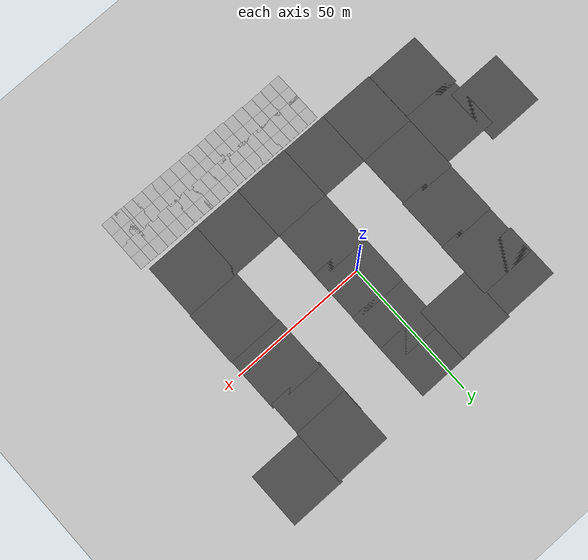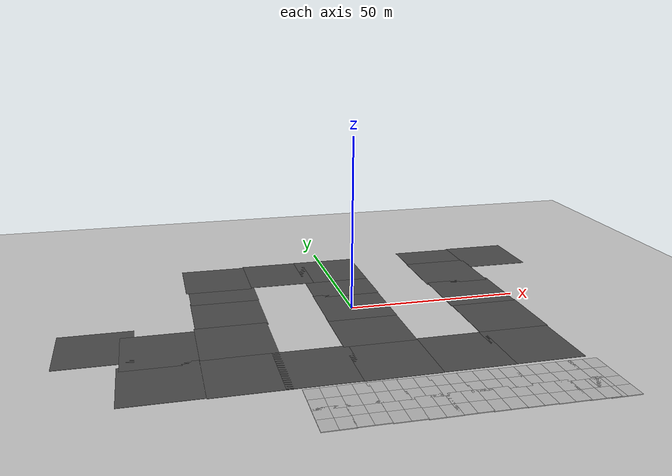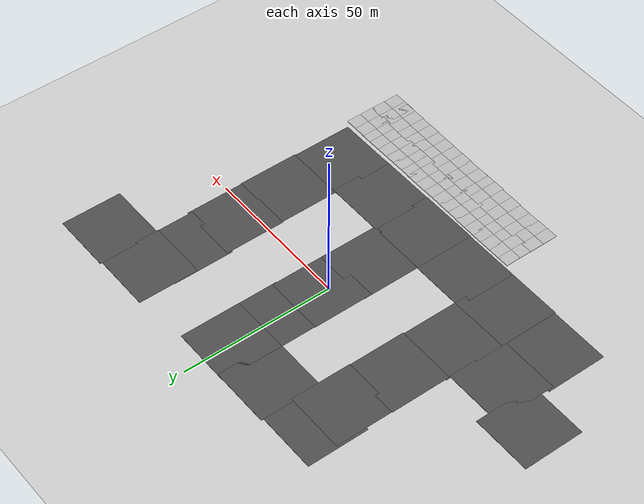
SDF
<sdf version="1.7">
 <world name="default">
  <light name="sun" type="directional">
   <pose>0 0 10 0 -0 0</pose>
   <diffuse>0.8 0.8 0.8 1</diffuse>
   <specular>0.2 0.2 0.2 1</specular>
   <attenuation>
    <range>1000</range>
    <constant>0.9</constant>
    <linear>0.01</linear>
    <quadratic>0.001</quadratic>
   </attenuation>
   <direction>-0.5 0.1 -0.9</direction>
   <spot><inner_angle>0</inner_angle><outer_angle>0</outer_angle><falloff>0</falloff></spot>
  </light>
  <model name="ground_plane">
   <static>1</static>
   <link name="link">
    <collision name="collision">
     <geometry><plane><normal>0 0 1</normal><size>100 100</size></plane></geometry>
     <surface><friction><ode><mu>100</mu><mu2>50</mu2></ode></friction></surface>
    </collision>
    <visual name="visual">
     <cast_shadows>0</cast_shadows>
     <geometry><plane><normal>0 0 1</normal><size>100 100</size></plane></geometry>
     <material>
      <script><uri>file://media/materials/scripts/gazebo.material</uri><name>Gazebo/Grey</name></script>
     </material>
    </visual>
   </link>
  </model>
  <gravity>0 0 -9.8</gravity>
  <magnetic_field>6e-06 2.3e-05 -4.2e-05</magnetic_field>
  <atmosphere type="adiabatic"/>
  <physics type="ode">
   <max_step_size>0.001</max_step_size>
   <real_time_factor>1</real_time_factor>
   <real_time_update_rate>1000</real_time_update_rate>
  </physics>
  <scene><ambient>0.4 0.4 0.4 1</ambient><background>0.7 0.7 0.7 1</background><shadows>1</shadows></scene>
  <audio><device>default</device></audio>
  <spherical_coordinates>
   <surface_model>EARTH_WGS84</surface_model>
   <latitude_deg>0</latitude_deg>
   <longitude_deg>0</longitude_deg>
   <elevation>0</elevation>
   <heading_deg>0</heading_deg>
  </spherical_coordinates>
  <model name="asphalt_plane">
   <static>1</static>
   <link name="link">
    <collision name="collision"><geometry><box><size>20 20 0.1</size></box></geometry></collision>
    <visual name="visual">
     <cast_shadows>0</cast_shadows>
     <geometry><box><size>20 20 0.1</size></box></geometry>
     <material>
      <script>
       <uri>model://asphalt_plane/materials/scripts</uri>
       <uri>model://asphalt_plane/materials/textures</uri>
       <name>vrc/asphalt</name>
      </script>
     </material>
    </visual>
   </link>
   <pose>-35.8594 -34.783 0 0 -0 0</pose>
  </model>
  <model name="asphalt_plane_1">
   <static>1</static>
   <link name="link">
    <collision name="collision"><geometry><box><size>20 20 0.1</size></box></geometry></collision>
    <visual name="visual">
     <cast_shadows>0</cast_shadows>
     <geometry><box><size>20 20 0.1</size></box></geometry>
     <material>
      <script>
       <uri>model://asphalt_plane/materials/scripts</uri>
       <uri>model://asphalt_plane/materials/textures</uri>
       <name>vrc/asphalt</name>
      </script>
     </material>
    </visual>
   </link>
   <pose>-35.8174 -14.9783 0 0 -0 0</pose>
  </model>
  <model name="asphalt_plane_1_clone">
   <static>1</static>
   <link name="link">
    <collision name="collision"><geometry><box><size>20 20 0.1</size></box></geometry></collision>
    <visual name="visual">
     <cast_shadows>0</cast_shadows>
     <geometry><box><size>20 20 0.1</size></box></geometry>
     <material>
      <script>
       <uri>model://asphalt_plane/materials/scripts</uri>
       <uri>model://asphalt_plane/materials/textures</uri>
       <name>vrc/asphalt</name>
      </script>
     </material>
    </visual>
   </link>
   <pose>-35.4994 3.67929 0 0 -0 0</pose>
  </model>
  <model name="asphalt_plane_1_clone_0">
   <static>1</static>
   <link name="link">
    <collision name="collision"><geometry><box><size>20 20 0.1</size></box></geometry></collision>
    <visual name="visual">
     <cast_shadows>0</cast_shadows>
     <geometry><box><size>20 20 0.1</size></box></geometry>
     <material>
      <script>
       <uri>model://asphalt_plane/materials/scripts</uri>
       <uri>model://asphalt_plane/materials/textures</uri>
       <name>vrc/asphalt</name>
      </script>
     </material>
    </visual>
   </link>
   <pose>-35.3091 22.4132 0 0 -0 0</pose>
  </model>
  <model name="asphalt_plane_1_clone_1">
   <static>1</static>
   <link name="link">
    <collision name="collision"><geometry><box><size>20 20 0.1</size></box></geometry></collision>
    <visual name="visual">
     <cast_shadows>0</cast_shadows>
     <geometry><box><size>20 20 0.1</size></box></geometry>
     <material>
      <script>
       <uri>model://asphalt_plane/materials/scripts</uri>
       <uri>model://asphalt_plane/materials/textures</uri>
       <name>vrc/asphalt</name>
      </script>
     </material>
    </visual>
   </link>
   <pose>-36.054 32.4043 0 0 -0 0</pose>
  </model>
  <model name="asphalt_plane_1_clone_2">
   <static>1</static>
   <link name="link">
    <collision name="collision"><geometry><box><size>20 20 0.1</size></box></geometry></collision>
    <visual name="visual">
     <cast_shadows>0</cast_shadows>
     <geometry><box><size>20 20 0.1</size></box></geometry>
     <material>
      <script>
       <uri>model://asphalt_plane/materials/scripts</uri>
       <uri>model://asphalt_plane/materials/textures</uri>
       <name>vrc/asphalt</name>
      </script>
     </material>
    </visual>
   </link>
   <pose>-16.2066 33.1694 0 0 -0 0</pose>
  </model>
  <model name="asphalt_plane_1_clone_3">
   <static>1</static>
   <link name="link">
    <collision name="collision"><geometry><box><size>20 20 0.1</size></box></geometry></collision>
    <visual name="visual">
     <cast_shadows>0</cast_shadows>
     <geometry><box><size>20 20 0.1</size></box></geometry>
     <material>
      <script>
       <uri>model://asphalt_plane/materials/scripts</uri>
       <uri>model://asphalt_plane/materials/textures</uri>
       <name>vrc/asphalt</name>
      </script>
     </material>
    </visual>
   </link>
   <pose>1.16306 33.2821 0 0 -0 0</pose>
  </model>
  <model name="asphalt_plane_1_clone_4">
   <static>1</static>
   <link name="link">
    <collision name="collision"><geometry><box><size>20 20 0.1</size></box></geometry></collision>
    <visual name="visual">
     <cast_shadows>0</cast_shadows>
     <geometry><box><size>20 20 0.1</size></box></geometry>
     <material>
      <script>
       <uri>model://asphalt_plane/materials/scripts</uri>
       <uri>model://asphalt_plane/materials/textures</uri>
       <name>vrc/asphalt</name>
      </script>
     </material>
    </visual>
   </link>
   <pose>1.12304 20.2153 0 0 -0 0</pose>
  </model>
  <model name="asphalt_plane_1_clone_5">
   <static>1</static>
   <link name="link">
    <collision name="collision"><geometry><box><size>20 20 0.1</size></box></geometry></collision>
    <visual name="visual">
     <cast_shadows>0</cast_shadows>
     <geometry><box><size>20 20 0.1</size></box></geometry>
     <material>
      <script>
       <uri>model://asphalt_plane/materials/scripts</uri>
       <uri>model://asphalt_plane/materials/textures</uri>
       <name>vrc/asphalt</name>
      </script>
     </material>
    </visual>
   </link>
   <pose>0.961719 1.80257 0 0 -0 0</pose>
  </model>
  <model name="asphalt_plane_1_clone_6">
   <static>1</static>
   <link name="link">
    <collision name="collision"><geometry><box><size>20 20 0.1</size></box></geometry></collision>
    <visual name="visual">
     <cast_shadows>0</cast_shadows>
     <geometry><box><size>20 20 0.1</size></box></geometry>
     <material>
      <script>
       <uri>model://asphalt_plane/materials/scripts</uri>
       <uri>model://asphalt_plane/materials/textures</uri>
       <name>vrc/asphalt</name>
      </script>
     </material>
    </visual>
   </link>
   <pose>0.874021 -15.4979 0 0 -0 0</pose>
  </model>
  <model name="asphalt_plane_1_clone_7">
   <static>1</static>
   <link name="link">
    <collision name="collision"><geometry><box><size>20 20 0.1</size></box></geometry></collision>
    <visual name="visual">
     <cast_shadows>0</cast_shadows>
     <geometry><box><size>20 20 0.1</size></box></geometry>
     <material>
      <script>
       <uri>model://asphalt_plane/materials/scripts</uri>
       <uri>model://asphalt_plane/materials/textures</uri>
       <name>vrc/asphalt</name>
      </script>
     </material>
    </visual>
   </link>
   <pose>0.94335 -34.9347 0 0 -0 0</pose>
  </model>
  <model name="asphalt_plane_1_clone_8">
   <static>1</static>
   <link name="link">
    <collision name="collision"><geometry><box><size>20 20 0.1</size></box></geometry></collision>
    <visual name="visual">
     <cast_shadows>0</cast_shadows>
     <geometry><box><size>20 20 0.1</size></box></geometry>
     <material>
      <script>
       <uri>model://asphalt_plane/materials/scripts</uri>
       <uri>model://asphalt_plane/materials/textures</uri>
       <name>vrc/asphalt</name>
      </script>
     </material>
    </visual>
   </link>
   <pose>19.9413 -34.81 0 0 -0 0</pose>
  </model>
  <model name="asphalt_plane_1_clone_9">
   <static>1</static>
   <link name="link">
    <collision name="collision"><geometry><box><size>20 20 0.1</size></box></geometry></collision>
    <visual name="visual">
     <cast_shadows>0</cast_shadows>
     <geometry><box><size>20 20 0.1</size></box></geometry>
     <material>
      <script>
       <uri>model://asphalt_plane/materials/scripts</uri>
       <uri>model://asphalt_plane/materials/textures</uri>
       <name>vrc/asphalt</name>
      </script>
     </material>
    </visual>
   </link>
   <pose>38.6128 -34.7162 0 0 -0 0</pose>
  </model>
  <model name="asphalt_plane_1_clone_10">
   <static>1</static>
   <link name="link">
    <collision name="collision"><geometry><box><size>20 20 0.1</size></box></geometry></collision>
    <visual name="visual">
     <cast_shadows>0</cast_shadows>
     <geometry><box><size>20 20 0.1</size></box></geometry>
     <material>
      <script>
       <uri>model://asphalt_plane/materials/scripts</uri>
       <uri>model://asphalt_plane/materials/textures</uri>
       <name>vrc/asphalt</name>
      </script>
     </material>
    </visual>
   </link>
   <pose>38.9072 -14.7741 0 0 -0 0</pose>
  </model>
  <model name="asphalt_plane_1_clone_11">
   <static>1</static>
   <link name="link">
    <collision name="collision"><geometry><box><size>20 20 0.1</size></box></geometry></collision>
    <visual name="visual">
     <cast_shadows>0</cast_shadows>
     <geometry><box><size>20 20 0.1</size></box></geometry>
     <material>
      <script>
       <uri>model://asphalt_plane/materials/scripts</uri>
       <uri>model://asphalt_plane/materials/textures</uri>
       <name>vrc/asphalt</name>
      </script>
     </material>
    </visual>
   </link>
   <pose>38.6721 4.79781 0 0 -0 0</pose>
  </model>
  <model name="asphalt_plane_1_clone_12">
   <static>1</static>
   <link name="link">
    <collision name="collision"><geometry><box><size>20 20 0.1</size></box></geometry></collision>
    <visual name="visual">
     <cast_shadows>0</cast_shadows>
     <geometry><box><size>20 20 0.1</size></box></geometry>
     <material>
      <script>
       <uri>model://asphalt_plane/materials/scripts</uri>
       <uri>model://asphalt_plane/materials/textures</uri>
       <name>vrc/asphalt</name>
      </script>
     </material>
    </visual>
   </link>
   <pose>38.1463 23.3539 0 0 -0 0</pose>
  </model>
  <model name="asphalt_plane_1_clone_13">
   <static>1</static>
   <link name="link">
    <collision name="collision"><geometry><box><size>20 20 0.1</size></box></geometry></collision>
    <visual name="visual">
     <cast_shadows>0</cast_shadows>
     <geometry><box><size>20 20 0.1</size></box></geometry>
     <material>
      <script>
       <uri>model://asphalt_plane/materials/scripts</uri>
       <uri>model://asphalt_plane/materials/textures</uri>
       <name>vrc/asphalt</name>
      </script>
     </material>
    </visual>
   </link>
   <pose>38.3197 35.4499 0 0 -0 0</pose>
  </model>
  <model name="asphalt_plane_1_clone_14">
   <static>1</static>
   <link name="link">
    <collision name="collision"><geometry><box><size>20 20 0.1</size></box></geometry></collision>
    <visual name="visual">
     <cast_shadows>0</cast_shadows>
     <geometry><box><size>20 20 0.1</size></box></geometry>
     <material>
      <script>
       <uri>model://asphalt_plane/materials/scripts</uri>
       <uri>model://asphalt_plane/materials/textures</uri>
       <name>vrc/asphalt</name>
      </script>
     </material>
    </visual>
   </link>
   <pose>57.4898 36.0845 0 0 -0 0</pose>
  </model>
  <model name="asphalt_plane_clone">
   <static>1</static>
   <link name="link">
    <collision name="collision"><geometry><box><size>20 20 0.1</size></box></geometry></collision>
    <visual name="visual">
     <cast_shadows>0</cast_shadows>
     <geometry><box><size>20 20 0.1</size></box></geometry>
     <material>
      <script>
       <uri>model://asphalt_plane/materials/scripts</uri>
       <uri>model://asphalt_plane/materials/textures</uri>
       <name>vrc/asphalt</name>
      </script>
     </material>
    </visual>
   </link>
   <pose>-55.9015 -34.5234 0 0 -0 0</pose>
  </model>
  <model name="asphalt_plane_clone_0">
   <static>1</static>
   <link name="link">
    <collision name="collision"><geometry><box><size>20 20 0.1</size></box></geometry></collision>
    <visual name="visual">
     <cast_shadows>0</cast_shadows>
     <geometry><box><size>20 20 0.1</size></box></geometry>
     <material>
      <script>
       <uri>model://asphalt_plane/materials/scripts</uri>
       <uri>model://asphalt_plane/materials/textures</uri>
       <name>vrc/asphalt</name>
      </script>
     </material>
    </visual>
   </link>
   <pose>-17.7083 -34.78 0 0 -0 0</pose>
  </model>
  <model name="asphalt_plane_1_clone_15">
   <static>1</static>
   <link name="link">
    <collision name="collision"><geometry><box><size>20 20 0.1</size></box></geometry></collision>
    <visual name="visual">
     <cast_shadows>0</cast_shadows>
     <geometry><box><size>20 20 0.1</size></box></geometry>
     <material>
      <script>
       <uri>model://asphalt_plane/materials/scripts</uri>
       <uri>model://asphalt_plane/materials/textures</uri>
       <name>vrc/asphalt</name>
      </script>
     </material>
    </visual>
   </link>
   <pose>-55.2715 -16.5354 0 0 -0 0</pose>
  </model>
  <model name="asphalt_plane_1_clone_16">
   <static>1</static>
   <link name="link">
    <collision name="collision"><geometry><box><size>20 20 0.1</size></box></geometry></collision>
    <visual name="visual">
     <cast_shadows>0</cast_shadows>
     <geometry><box><size>20 20 0.1</size></box></geometry>
     <material>
      <script>
       <uri>model://asphalt_plane/materials/scripts</uri>
       <uri>model://asphalt_plane/materials/textures</uri>
       <name>vrc/asphalt</name>
      </script>
     </material>
    </visual>
   </link>
   <pose>-71.5122 -12.2681 0 0 -0 0</pose>
  </model>
  <model name="mud_box">
   <static>1</static>
   <link name="link">
    <collision name="collision"><geometry><box><size>8 10 0.2</size></box></geometry></collision>
    <visual name="visual_1">
     <pose>-2 2.5 0 0 -0 0</pose>
     <cast_shadows>0</cast_shadows>
     <geometry><box><size>4 5 0.2</size></box></geometry>
     <material>
      <script>
       <uri>model://mud_box/materials/scripts</uri>
       <uri>model://mud_box/materials/textures</uri>
       <name>vrc/mud</name>
      </script>
     </material>
    </visual>
    <visual name="visual_2">
     <pose>2 2.5 0 0 -0 0</pose>
     <cast_shadows>0</cast_shadows>
     <geometry><box><size>4 5 0.2</size></box></geometry>
     <material>
      <script>
       <uri>model://mud_box/materials/scripts</uri>
       <uri>model://mud_box/materials/textures</uri>
       <name>vrc/mud</name>
      </script>
     </material>
    </visual>
    <visual name="visual_3">
     <pose>2 -2.5 0 0 -0 0</pose>
     <cast_shadows>0</cast_shadows>
     <geometry><box><size>4 5 0.2</size></box></geometry>
     <material>
      <script>
       <uri>model://mud_box/materials/scripts</uri>
       <uri>model://mud_box/materials/textures</uri>
       <name>vrc/mud</name>
      </script>
     </material>
    </visual>
    <visual name="visual_4">
     <pose>-2 -2.5 0 0 -0 0</pose>
     <cast_shadows>0</cast_shadows>
     <geometry><box><size>4 5 0.2</size></box></geometry>
     <material>
      <script>
       <uri>model://mud_box/materials/scripts</uri>
       <uri>model://mud_box/materials/textures</uri>
       <name>vrc/mud</name>
      </script>
     </material>
    </visual>
   </link>
   <pose>-20.1714 -50.6717 0 0 -0 0</pose>
  </model>
  <model name="mud_box_clone">
   <static>1</static>
   <link name="link">
    <collision name="collision"><geometry><box><size>8 10 0.2</size></box></geometry></collision>
    <visual name="visual_1">
     <pose>-2 2.5 0 0 -0 0</pose>
     <cast_shadows>0</cast_shadows>
     <geometry><box><size>4 5 0.2</size></box></geometry>
     <material>
      <script>
       <uri>model://mud_box/materials/scripts</uri>
       <uri>model://mud_box/materials/textures</uri>
       <name>vrc/mud</name>
      </script>
     </material>
    </visual>
    <visual name="visual_2">
     <pose>2 2.5 0 0 -0 0</pose>
     <cast_shadows>0</cast_shadows>
     <geometry><box><size>4 5 0.2</size></box></geometry>
     <material>
      <script>
       <uri>model://mud_box/materials/scripts</uri>
       <uri>model://mud_box/materials/textures</uri>
       <name>vrc/mud</name>
      </script>
     </material>
    </visual>
    <visual name="visual_3">
     <pose>2 -2.5 0 0 -0 0</pose>
     <cast_shadows>0</cast_shadows>
     <geometry><box><size>4 5 0.2</size></box></geometry>
     <material>
      <script>
       <uri>model://mud_box/materials/scripts</uri>
       <uri>model://mud_box/materials/textures</uri>
       <name>vrc/mud</name>
      </script>
     </material>
    </visual>
    <visual name="visual_4">
     <pose>-2 -2.5 0 0 -0 0</pose>
     <cast_shadows>0</cast_shadows>
     <geometry><box><size>4 5 0.2</size></box></geometry>
     <material>
      <script>
       <uri>model://mud_box/materials/scripts</uri>
       <uri>model://mud_box/materials/textures</uri>
       <name>vrc/mud</name>
      </script>
     </material>
    </visual>
   </link>
   <pose>-12.4644 -50.6601 0 0 -0 0</pose>
  </model>
  <model name="mud_box_clone_0">
   <static>1</static>
   <link name="link">
    <collision name="collision"><geometry><box><size>8 10 0.2</size></box></geometry></collision>
    <visual name="visual_1">
     <pose>-2 2.5 0 0 -0 0</pose>
     <cast_shadows>0</cast_shadows>
     <geometry><box><size>4 5 0.2</size></box></geometry>
     <material>
      <script>
       <uri>model://mud_box/materials/scripts</uri>
       <uri>model://mud_box/materials/textures</uri>
       <name>vrc/mud</name>
      </script>
     </material>
    </visual>
    <visual name="visual_2">
     <pose>2 2.5 0 0 -0 0</pose>
     <cast_shadows>0</cast_shadows>
     <geometry><box><size>4 5 0.2</size></box></geometry>
     <material>
      <script>
       <uri>model://mud_box/materials/scripts</uri>
       <uri>model://mud_box/materials/textures</uri>
       <name>vrc/mud</name>
      </script>
     </material>
    </visual>
    <visual name="visual_3">
     <pose>2 -2.5 0 0 -0 0</pose>
     <cast_shadows>0</cast_shadows>
     <geometry><box><size>4 5 0.2</size></box></geometry>
     <material>
      <script>
       <uri>model://mud_box/materials/scripts</uri>
       <uri>model://mud_box/materials/textures</uri>
       <name>vrc/mud</name>
      </script>
     </material>
    </visual>
    <visual name="visual_4">
     <pose>-2 -2.5 0 0 -0 0</pose>
     <cast_shadows>0</cast_shadows>
     <geometry><box><size>4 5 0.2</size></box></geometry>
     <material>
      <script>
       <uri>model://mud_box/materials/scripts</uri>
       <uri>model://mud_box/materials/textures</uri>
       <name>vrc/mud</name>
      </script>
     </material>
    </visual>
   </link>
   <pose>-5.11411 -50.7306 0 0 -0 0</pose>
  </model>
  <model name="mud_box_clone_1">
   <static>1</static>
   <link name="link">
    <collision name="collision"><geometry><box><size>8 10 0.2</size></box></geometry></collision>
    <visual name="visual_1">
     <pose>-2 2.5 0 0 -0 0</pose>
     <cast_shadows>0</cast_shadows>
     <geometry><box><size>4 5 0.2</size></box></geometry>
     <material>
      <script>
       <uri>model://mud_box/materials/scripts</uri>
       <uri>model://mud_box/materials/textures</uri>
       <name>vrc/mud</name>
      </script>
     </material>
    </visual>
    <visual name="visual_2">
     <pose>2 2.5 0 0 -0 0</pose>
     <cast_shadows>0</cast_shadows>
     <geometry><box><size>4 5 0.2</size></box></geometry>
     <material>
      <script>
       <uri>model://mud_box/materials/scripts</uri>
       <uri>model://mud_box/materials/textures</uri>
       <name>vrc/mud</name>
      </script>
     </material>
    </visual>
    <visual name="visual_3">
     <pose>2 -2.5 0 0 -0 0</pose>
     <cast_shadows>0</cast_shadows>
     <geometry><box><size>4 5 0.2</size></box></geometry>
     <material>
      <script>
       <uri>model://mud_box/materials/scripts</uri>
       <uri>model://mud_box/materials/textures</uri>
       <name>vrc/mud</name>
      </script>
     </material>
    </visual>
    <visual name="visual_4">
     <pose>-2 -2.5 0 0 -0 0</pose>
     <cast_shadows>0</cast_shadows>
     <geometry><box><size>4 5 0.2</size></box></geometry>
     <material>
      <script>
       <uri>model://mud_box/materials/scripts</uri>
       <uri>model://mud_box/materials/textures</uri>
       <name>vrc/mud</name>
      </script>
     </material>
    </visual>
   </link>
   <pose>2.39543 -50.9099 0 0 -0 0</pose>
  </model>
  <model name="mud_box_clone_2">
   <static>1</static>
   <link name="link">
    <collision name="collision"><geometry><box><size>8 10 0.2</size></box></geometry></collision>
    <visual name="visual_1">
     <pose>-2 2.5 0 0 -0 0</pose>
     <cast_shadows>0</cast_shadows>
     <geometry><box><size>4 5 0.2</size></box></geometry>
     <material>
      <script>
       <uri>model://mud_box/materials/scripts</uri>
       <uri>model://mud_box/materials/textures</uri>
       <name>vrc/mud</name>
      </script>
     </material>
    </visual>
    <visual name="visual_2">
     <pose>2 2.5 0 0 -0 0</pose>
     <cast_shadows>0</cast_shadows>
     <geometry><box><size>4 5 0.2</size></box></geometry>
     <material>
      <script>
       <uri>model://mud_box/materials/scripts</uri>
       <uri>model://mud_box/materials/textures</uri>
       <name>vrc/mud</name>
      </script>
     </material>
    </visual>
    <visual name="visual_3">
     <pose>2 -2.5 0 0 -0 0</pose>
     <cast_shadows>0</cast_shadows>
     <geometry><box><size>4 5 0.2</size></box></geometry>
     <material>
      <script>
       <uri>model://mud_box/materials/scripts</uri>
       <uri>model://mud_box/materials/textures</uri>
       <name>vrc/mud</name>
      </script>
     </material>
    </visual>
    <visual name="visual_4">
     <pose>-2 -2.5 0 0 -0 0</pose>
     <cast_shadows>0</cast_shadows>
     <geometry><box><size>4 5 0.2</size></box></geometry>
     <material>
      <script>
       <uri>model://mud_box/materials/scripts</uri>
       <uri>model://mud_box/materials/textures</uri>
       <name>vrc/mud</name>
      </script>
     </material>
    </visual>
   </link>
   <pose>9.78595 -50.9986 0 0 -0 0</pose>
  </model>
  <model name="mud_box_clone_3">
   <static>1</static>
   <link name="link">
    <collision name="collision"><geometry><box><size>8 10 0.2</size></box></geometry></collision>
    <visual name="visual_1">
     <pose>-2 2.5 0 0 -0 0</pose>
     <cast_shadows>0</cast_shadows>
     <geometry><box><size>4 5 0.2</size></box></geometry>
     <material>
      <script>
       <uri>model://mud_box/materials/scripts</uri>
       <uri>model://mud_box/materials/textures</uri>
       <name>vrc/mud</name>
      </script>
     </material>
    </visual>
    <visual name="visual_2">
     <pose>2 2.5 0 0 -0 0</pose>
     <cast_shadows>0</cast_shadows>
     <geometry><box><size>4 5 0.2</size></box></geometry>
     <material>
      <script>
       <uri>model://mud_box/materials/scripts</uri>
       <uri>model://mud_box/materials/textures</uri>
       <name>vrc/mud</name>
      </script>
     </material>
    </visual>
    <visual name="visual_3">
     <pose>2 -2.5 0 0 -0 0</pose>
     <cast_shadows>0</cast_shadows>
     <geometry><box><size>4 5 0.2</size></box></geometry>
     <material>
      <script>
       <uri>model://mud_box/materials/scripts</uri>
       <uri>model://mud_box/materials/textures</uri>
       <name>vrc/mud</name>
      </script>
     </material>
    </visual>
    <visual name="visual_4">
     <pose>-2 -2.5 0 0 -0 0</pose>
     <cast_shadows>0</cast_shadows>
     <geometry><box><size>4 5 0.2</size></box></geometry>
     <material>
      <script>
       <uri>model://mud_box/materials/scripts</uri>
       <uri>model://mud_box/materials/textures</uri>
       <name>vrc/mud</name>
      </script>
     </material>
    </visual>
   </link>
   <pose>17.3595 -50.9319 0 0 -0 0</pose>
  </model>
  <model name="mud_box_clone_4">
   <static>1</static>
   <link name="link">
    <collision name="collision"><geometry><box><size>8 10 0.2</size></box></geometry></collision>
    <visual name="visual_1">
     <pose>-2 2.5 0 0 -0 0</pose>
     <cast_shadows>0</cast_shadows>
     <geometry><box><size>4 5 0.2</size></box></geometry>
     <material>
      <script>
       <uri>model://mud_box/materials/scripts</uri>
       <uri>model://mud_box/materials/textures</uri>
       <name>vrc/mud</name>
      </script>
     </material>
    </visual>
    <visual name="visual_2">
     <pose>2 2.5 0 0 -0 0</pose>
     <cast_shadows>0</cast_shadows>
     <geometry><box><size>4 5 0.2</size></box></geometry>
     <material>
      <script>
       <uri>model://mud_box/materials/scripts</uri>
       <uri>model://mud_box/materials/textures</uri>
       <name>vrc/mud</name>
      </script>
     </material>
    </visual>
    <visual name="visual_3">
     <pose>2 -2.5 0 0 -0 0</pose>
     <cast_shadows>0</cast_shadows>
     <geometry><box><size>4 5 0.2</size></box></geometry>
     <material>
      <script>
       <uri>model://mud_box/materials/scripts</uri>
       <uri>model://mud_box/materials/textures</uri>
       <name>vrc/mud</name>
      </script>
     </material>
    </visual>
    <visual name="visual_4">
     <pose>-2 -2.5 0 0 -0 0</pose>
     <cast_shadows>0</cast_shadows>
     <geometry><box><size>4 5 0.2</size></box></geometry>
     <material>
      <script>
       <uri>model://mud_box/materials/scripts</uri>
       <uri>model://mud_box/materials/textures</uri>
       <name>vrc/mud</name>
      </script>
     </material>
    </visual>
   </link>
   <pose>24.2144 -51.0695 0 0 -0 0</pose>
  </model>
  <model name="mud_box_clone_5">
   <static>1</static>
   <link name="link">
    <collision name="collision"><geometry><box><size>8 10 0.2</size></box></geometry></collision>
    <visual name="visual_1">
     <pose>-2 2.5 0 0 -0 0</pose>
     <cast_shadows>0</cast_shadows>
     <geometry><box><size>4 5 0.2</size></box></geometry>
     <material>
      <script>
       <uri>model://mud_box/materials/scripts</uri>
       <uri>model://mud_box/materials/textures</uri>
       <name>vrc/mud</name>
      </script>
     </material>
    </visual>
    <visual name="visual_2">
     <pose>2 2.5 0 0 -0 0</pose>
     <cast_shadows>0</cast_shadows>
     <geometry><box><size>4 5 0.2</size></box></geometry>
     <material>
      <script>
       <uri>model://mud_box/materials/scripts</uri>
       <uri>model://mud_box/materials/textures</uri>
       <name>vrc/mud</name>
      </script>
     </material>
    </visual>
    <visual name="visual_3">
     <pose>2 -2.5 0 0 -0 0</pose>
     <cast_shadows>0</cast_shadows>
     <geometry><box><size>4 5 0.2</size></box></geometry>
     <material>
      <script>
       <uri>model://mud_box/materials/scripts</uri>
       <uri>model://mud_box/materials/textures</uri>
       <name>vrc/mud</name>
      </script>
     </material>
    </visual>
    <visual name="visual_4">
     <pose>-2 -2.5 0 0 -0 0</pose>
     <cast_shadows>0</cast_shadows>
     <geometry><box><size>4 5 0.2</size></box></geometry>
     <material>
      <script>
       <uri>model://mud_box/materials/scripts</uri>
       <uri>model://mud_box/materials/textures</uri>
       <name>vrc/mud</name>
      </script>
     </material>
    </visual>
   </link>
   <pose>31.5048 -51.0673 0 0 -0 0</pose>
  </model>
  <model name="mud_box_clone_6">
   <static>1</static>
   <link name="link">
    <collision name="collision"><geometry><box><size>8 10 0.2</size></box></geometry></collision>
    <visual name="visual_1">
     <pose>-2 2.5 0 0 -0 0</pose>
     <cast_shadows>0</cast_shadows>
     <geometry><box><size>4 5 0.2</size></box></geometry>
     <material>
      <script>
       <uri>model://mud_box/materials/scripts</uri>
       <uri>model://mud_box/materials/textures</uri>
       <name>vrc/mud</name>
      </script>
     </material>
    </visual>
    <visual name="visual_2">
     <pose>2 2.5 0 0 -0 0</pose>
     <cast_shadows>0</cast_shadows>
     <geometry><box><size>4 5 0.2</size></box></geometry>
     <material>
      <script>
       <uri>model://mud_box/materials/scripts</uri>
       <uri>model://mud_box/materials/textures</uri>
       <name>vrc/mud</name>
      </script>
     </material>
    </visual>
    <visual name="visual_3">
     <pose>2 -2.5 0 0 -0 0</pose>
     <cast_shadows>0</cast_shadows>
     <geometry><box><size>4 5 0.2</size></box></geometry>
     <material>
      <script>
       <uri>model://mud_box/materials/scripts</uri>
       <uri>model://mud_box/materials/textures</uri>
       <name>vrc/mud</name>
      </script>
     </material>
    </visual>
    <visual name="visual_4">
     <pose>-2 -2.5 0 0 -0 0</pose>
     <cast_shadows>0</cast_shadows>
     <geometry><box><size>4 5 0.2</size></box></geometry>
     <material>
      <script>
       <uri>model://mud_box/materials/scripts</uri>
       <uri>model://mud_box/materials/textures</uri>
       <name>vrc/mud</name>
      </script>
     </material>
    </visual>
   </link>
   <pose>39.4083 -51.0318 0 0 -0 0</pose>
  </model>
  <model name="mud_box_clone_7">
   <static>1</static>
   <link name="link">
    <collision name="collision"><geometry><box><size>8 10 0.2</size></box></geometry></collision>
    <visual name="visual_1">
     <pose>-2 2.5 0 0 -0 0</pose>
     <cast_shadows>0</cast_shadows>
     <geometry><box><size>4 5 0.2</size></box></geometry>
     <material>
      <script>
       <uri>model://mud_box/materials/scripts</uri>
       <uri>model://mud_box/materials/textures</uri>
       <name>vrc/mud</name>
      </script>
     </material>
    </visual>
    <visual name="visual_2">
     <pose>2 2.5 0 0 -0 0</pose>
     <cast_shadows>0</cast_shadows>
     <geometry><box><size>4 5 0.2</size></box></geometry>
     <material>
      <script>
       <uri>model://mud_box/materials/scripts</uri>
       <uri>model://mud_box/materials/textures</uri>
       <name>vrc/mud</name>
      </script>
     </material>
    </visual>
    <visual name="visual_3">
     <pose>2 -2.5 0 0 -0 0</pose>
     <cast_shadows>0</cast_shadows>
     <geometry><box><size>4 5 0.2</size></box></geometry>
     <material>
      <script>
       <uri>model://mud_box/materials/scripts</uri>
       <uri>model://mud_box/materials/textures</uri>
       <name>vrc/mud</name>
      </script>
     </material>
    </visual>
    <visual name="visual_4">
     <pose>-2 -2.5 0 0 -0 0</pose>
     <cast_shadows>0</cast_shadows>
     <geometry><box><size>4 5 0.2</size></box></geometry>
     <material>
      <script>
       <uri>model://mud_box/materials/scripts</uri>
       <uri>model://mud_box/materials/textures</uri>
       <name>vrc/mud</name>
      </script>
     </material>
    </visual>
   </link>
   <pose>46.6349 -51.1655 0 0 -0 0</pose>
  </model>
  <model name="mud_box_clone_8">
   <static>1</static>
   <link name="link">
    <collision name="collision"><geometry><box><size>8 10 0.2</size></box></geometry></collision>
    <visual name="visual_1">
     <pose>-2 2.5 0 0 -0 0</pose>
     <cast_shadows>0</cast_shadows>
     <geometry><box><size>4 5 0.2</size></box></geometry>
     <material>
      <script>
       <uri>model://mud_box/materials/scripts</uri>
       <uri>model://mud_box/materials/textures</uri>
       <name>vrc/mud</name>
      </script>
     </material>
    </visual>
    <visual name="visual_2">
     <pose>2 2.5 0 0 -0 0</pose>
     <cast_shadows>0</cast_shadows>
     <geometry><box><size>4 5 0.2</size></box></geometry>
     <material>
      <script>
       <uri>model://mud_box/materials/scripts</uri>
       <uri>model://mud_box/materials/textures</uri>
       <name>vrc/mud</name>
      </script>
     </material>
    </visual>
    <visual name="visual_3">
     <pose>2 -2.5 0 0 -0 0</pose>
     <cast_shadows>0</cast_shadows>
     <geometry><box><size>4 5 0.2</size></box></geometry>
     <material>
      <script>
       <uri>model://mud_box/materials/scripts</uri>
       <uri>model://mud_box/materials/textures</uri>
       <name>vrc/mud</name>
      </script>
     </material>
    </visual>
    <visual name="visual_4">
     <pose>-2 -2.5 0 0 -0 0</pose>
     <cast_shadows>0</cast_shadows>
     <geometry><box><size>4 5 0.2</size></box></geometry>
     <material>
      <script>
       <uri>model://mud_box/materials/scripts</uri>
       <uri>model://mud_box/materials/textures</uri>
       <name>vrc/mud</name>
      </script>
     </material>
    </visual>
   </link>
   <pose>-20.2041 -59.5861 0 0 -0 0</pose>
  </model>
  <model name="mud_box_clone_9">
   <static>1</static>
   <link name="link">
    <collision name="collision"><geometry><box><size>8 10 0.2</size></box></geometry></collision>
    <visual name="visual_1">
     <pose>-2 2.5 0 0 -0 0</pose>
     <cast_shadows>0</cast_shadows>
     <geometry><box><size>4 5 0.2</size></box></geometry>
     <material>
      <script>
       <uri>model://mud_box/materials/scripts</uri>
       <uri>model://mud_box/materials/textures</uri>
       <name>vrc/mud</name>
      </script>
     </material>
    </visual>
    <visual name="visual_2">
     <pose>2 2.5 0 0 -0 0</pose>
     <cast_shadows>0</cast_shadows>
     <geometry><box><size>4 5 0.2</size></box></geometry>
     <material>
      <script>
       <uri>model://mud_box/materials/scripts</uri>
       <uri>model://mud_box/materials/textures</uri>
       <name>vrc/mud</name>
      </script>
     </material>
    </visual>
    <visual name="visual_3">
     <pose>2 -2.5 0 0 -0 0</pose>
     <cast_shadows>0</cast_shadows>
     <geometry><box><size>4 5 0.2</size></box></geometry>
     <material>
      <script>
       <uri>model://mud_box/materials/scripts</uri>
       <uri>model://mud_box/materials/textures</uri>
       <name>vrc/mud</name>
      </script>
     </material>
    </visual>
    <visual name="visual_4">
     <pose>-2 -2.5 0 0 -0 0</pose>
     <cast_shadows>0</cast_shadows>
     <geometry><box><size>4 5 0.2</size></box></geometry>
     <material>
      <script>
       <uri>model://mud_box/materials/scripts</uri>
       <uri>model://mud_box/materials/textures</uri>
       <name>vrc/mud</name>
      </script>
     </material>
    </visual>
   </link>
   <pose>-12.4186 -59.4615 0 0 -0 0</pose>
  </model>
  <model name="mud_box_clone_10">
   <static>1</static>
   <link name="link">
    <collision name="collision"><geometry><box><size>8 10 0.2</size></box></geometry></collision>
    <visual name="visual_1">
     <pose>-2 2.5 0 0 -0 0</pose>
     <cast_shadows>0</cast_shadows>
     <geometry><box><size>4 5 0.2</size></box></geometry>
     <material>
      <script>
       <uri>model://mud_box/materials/scripts</uri>
       <uri>model://mud_box/materials/textures</uri>
       <name>vrc/mud</name>
      </script>
     </material>
    </visual>
    <visual name="visual_2">
     <pose>2 2.5 0 0 -0 0</pose>
     <cast_shadows>0</cast_shadows>
     <geometry><box><size>4 5 0.2</size></box></geometry>
     <material>
      <script>
       <uri>model://mud_box/materials/scripts</uri>
       <uri>model://mud_box/materials/textures</uri>
       <name>vrc/mud</name>
      </script>
     </material>
    </visual>
    <visual name="visual_3">
     <pose>2 -2.5 0 0 -0 0</pose>
     <cast_shadows>0</cast_shadows>
     <geometry><box><size>4 5 0.2</size></box></geometry>
     <material>
      <script>
       <uri>model://mud_box/materials/scripts</uri>
       <uri>model://mud_box/materials/textures</uri>
       <name>vrc/mud</name>
      </script>
     </material>
    </visual>
    <visual name="visual_4">
     <pose>-2 -2.5 0 0 -0 0</pose>
     <cast_shadows>0</cast_shadows>
     <geometry><box><size>4 5 0.2</size></box></geometry>
     <material>
      <script>
       <uri>model://mud_box/materials/scripts</uri>
       <uri>model://mud_box/materials/textures</uri>
       <name>vrc/mud</name>
      </script>
     </material>
    </visual>
   </link>
   <pose>-4.41122 -59.6758 0 0 -0 0</pose>
  </model>
  <model name="mud_box_clone_11">
   <static>1</static>
   <link name="link">
    <collision name="collision"><geometry><box><size>8 10 0.2</size></box></geometry></collision>
    <visual name="visual_1">
     <pose>-2 2.5 0 0 -0 0</pose>
     <cast_shadows>0</cast_shadows>
     <geometry><box><size>4 5 0.2</size></box></geometry>
     <material>
      <script>
       <uri>model://mud_box/materials/scripts</uri>
       <uri>model://mud_box/materials/textures</uri>
       <name>vrc/mud</name>
      </script>
     </material>
    </visual>
    <visual name="visual_2">
     <pose>2 2.5 0 0 -0 0</pose>
     <cast_shadows>0</cast_shadows>
     <geometry><box><size>4 5 0.2</size></box></geometry>
     <material>
      <script>
       <uri>model://mud_box/materials/scripts</uri>
       <uri>model://mud_box/materials/textures</uri>
       <name>vrc/mud</name>
      </script>
     </material>
    </visual>
    <visual name="visual_3">
     <pose>2 -2.5 0 0 -0 0</pose>
     <cast_shadows>0</cast_shadows>
     <geometry><box><size>4 5 0.2</size></box></geometry>
     <material>
      <script>
       <uri>model://mud_box/materials/scripts</uri>
       <uri>model://mud_box/materials/textures</uri>
       <name>vrc/mud</name>
      </script>
     </material>
    </visual>
    <visual name="visual_4">
     <pose>-2 -2.5 0 0 -0 0</pose>
     <cast_shadows>0</cast_shadows>
     <geometry><box><size>4 5 0.2</size></box></geometry>
     <material>
      <script>
       <uri>model://mud_box/materials/scripts</uri>
       <uri>model://mud_box/materials/textures</uri>
       <name>vrc/mud</name>
      </script>
     </material>
    </visual>
   </link>
   <pose>3.48847 -59.9243 0 0 -0 0</pose>
  </model>
  <model name="mud_box_clone_12">
   <static>1</static>
   <link name="link">
    <collision name="collision"><geometry><box><size>8 10 0.2</size></box></geometry></collision>
    <visual name="visual_1">
     <pose>-2 2.5 0 0 -0 0</pose>
     <cast_shadows>0</cast_shadows>
     <geometry><box><size>4 5 0.2</size></box></geometry>
     <material>
      <script>
       <uri>model://mud_box/materials/scripts</uri>
       <uri>model://mud_box/materials/textures</uri>
       <name>vrc/mud</name>
      </script>
     </material>
    </visual>
    <visual name="visual_2">
     <pose>2 2.5 0 0 -0 0</pose>
     <cast_shadows>0</cast_shadows>
     <geometry><box><size>4 5 0.2</size></box></geometry>
     <material>
      <script>
       <uri>model://mud_box/materials/scripts</uri>
       <uri>model://mud_box/materials/textures</uri>
       <name>vrc/mud</name>
      </script>
     </material>
    </visual>
    <visual name="visual_3">
     <pose>2 -2.5 0 0 -0 0</pose>
     <cast_shadows>0</cast_shadows>
     <geometry><box><size>4 5 0.2</size></box></geometry>
     <material>
      <script>
       <uri>model://mud_box/materials/scripts</uri>
       <uri>model://mud_box/materials/textures</uri>
       <name>vrc/mud</name>
      </script>
     </material>
    </visual>
    <visual name="visual_4">
     <pose>-2 -2.5 0 0 -0 0</pose>
     <cast_shadows>0</cast_shadows>
     <geometry><box><size>4 5 0.2</size></box></geometry>
     <material>
      <script>
       <uri>model://mud_box/materials/scripts</uri>
       <uri>model://mud_box/materials/textures</uri>
       <name>vrc/mud</name>
      </script>
     </material>
    </visual>
   </link>
   <pose>10.6489 -59.847 0 0 -0 0</pose>
  </model>
  <model name="mud_box_clone_13">
   <static>1</static>
   <link name="link">
    <collision name="collision"><geometry><box><size>8 10 0.2</size></box></geometry></collision>
    <visual name="visual_1">
     <pose>-2 2.5 0 0 -0 0</pose>
     <cast_shadows>0</cast_shadows>
     <geometry><box><size>4 5 0.2</size></box></geometry>
     <material>
      <script>
       <uri>model://mud_box/materials/scripts</uri>
       <uri>model://mud_box/materials/textures</uri>
       <name>vrc/mud</name>
      </script>
     </material>
    </visual>
    <visual name="visual_2">
     <pose>2 2.5 0 0 -0 0</pose>
     <cast_shadows>0</cast_shadows>
     <geometry><box><size>4 5 0.2</size></box></geometry>
     <material>
      <script>
       <uri>model://mud_box/materials/scripts</uri>
       <uri>model://mud_box/materials/textures</uri>
       <name>vrc/mud</name>
      </script>
     </material>
    </visual>
    <visual name="visual_3">
     <pose>2 -2.5 0 0 -0 0</pose>
     <cast_shadows>0</cast_shadows>
     <geometry><box><size>4 5 0.2</size></box></geometry>
     <material>
      <script>
       <uri>model://mud_box/materials/scripts</uri>
       <uri>model://mud_box/materials/textures</uri>
       <name>vrc/mud</name>
      </script>
     </material>
    </visual>
    <visual name="visual_4">
     <pose>-2 -2.5 0 0 -0 0</pose>
     <cast_shadows>0</cast_shadows>
     <geometry><box><size>4 5 0.2</size></box></geometry>
     <material>
      <script>
       <uri>model://mud_box/materials/scripts</uri>
       <uri>model://mud_box/materials/textures</uri>
       <name>vrc/mud</name>
      </script>
     </material>
    </visual>
   </link>
   <pose>18.3846 -59.993 0 0 -0 0</pose>
  </model>
  <model name="mud_box_clone_14">
   <static>1</static>
   <link name="link">
    <collision name="collision"><geometry><box><size>8 10 0.2</size></box></geometry></collision>
    <visual name="visual_1">
     <pose>-2 2.5 0 0 -0 0</pose>
     <cast_shadows>0</cast_shadows>
     <geometry><box><size>4 5 0.2</size></box></geometry>
     <material>
      <script>
       <uri>model://mud_box/materials/scripts</uri>
       <uri>model://mud_box/materials/textures</uri>
       <name>vrc/mud</name>
      </script>
     </material>
    </visual>
    <visual name="visual_2">
     <pose>2 2.5 0 0 -0 0</pose>
     <cast_shadows>0</cast_shadows>
     <geometry><box><size>4 5 0.2</size></box></geometry>
     <material>
      <script>
       <uri>model://mud_box/materials/scripts</uri>
       <uri>model://mud_box/materials/textures</uri>
       <name>vrc/mud</name>
      </script>
     </material>
    </visual>
    <visual name="visual_3">
     <pose>2 -2.5 0 0 -0 0</pose>
     <cast_shadows>0</cast_shadows>
     <geometry><box><size>4 5 0.2</size></box></geometry>
     <material>
      <script>
       <uri>model://mud_box/materials/scripts</uri>
       <uri>model://mud_box/materials/textures</uri>
       <name>vrc/mud</name>
      </script>
     </material>
    </visual>
    <visual name="visual_4">
     <pose>-2 -2.5 0 0 -0 0</pose>
     <cast_shadows>0</cast_shadows>
     <geometry><box><size>4 5 0.2</size></box></geometry>
     <material>
      <script>
       <uri>model://mud_box/materials/scripts</uri>
       <uri>model://mud_box/materials/textures</uri>
       <name>vrc/mud</name>
      </script>
     </material>
    </visual>
   </link>
   <pose>26.3854 -60.093 0 0 -0 0</pose>
  </model>
  <model name="mud_box_clone_15">
   <static>1</static>
   <link name="link">
    <collision name="collision"><geometry><box><size>8 10 0.2</size></box></geometry></collision>
    <visual name="visual_1">
     <pose>-2 2.5 0 0 -0 0</pose>
     <cast_shadows>0</cast_shadows>
     <geometry><box><size>4 5 0.2</size></box></geometry>
     <material>
      <script>
       <uri>model://mud_box/materials/scripts</uri>
       <uri>model://mud_box/materials/textures</uri>
       <name>vrc/mud</name>
      </script>
     </material>
    </visual>
    <visual name="visual_2">
     <pose>2 2.5 0 0 -0 0</pose>
     <cast_shadows>0</cast_shadows>
     <geometry><box><size>4 5 0.2</size></box></geometry>
     <material>
      <script>
       <uri>model://mud_box/materials/scripts</uri>
       <uri>model://mud_box/materials/textures</uri>
       <name>vrc/mud</name>
      </script>
     </material>
    </visual>
    <visual name="visual_3">
     <pose>2 -2.5 0 0 -0 0</pose>
     <cast_shadows>0</cast_shadows>
     <geometry><box><size>4 5 0.2</size></box></geometry>
     <material>
      <script>
       <uri>model://mud_box/materials/scripts</uri>
       <uri>model://mud_box/materials/textures</uri>
       <name>vrc/mud</name>
      </script>
     </material>
    </visual>
    <visual name="visual_4">
     <pose>-2 -2.5 0 0 -0 0</pose>
     <cast_shadows>0</cast_shadows>
     <geometry><box><size>4 5 0.2</size></box></geometry>
     <material>
      <script>
       <uri>model://mud_box/materials/scripts</uri>
       <uri>model://mud_box/materials/textures</uri>
       <name>vrc/mud</name>
      </script>
     </material>
    </visual>
   </link>
   <pose>33.9132 -60.2351 0 0 -0 0</pose>
  </model>
  <model name="mud_box_clone_16">
   <static>1</static>
   <link name="link">
    <collision name="collision"><geometry><box><size>8 10 0.2</size></box></geometry></collision>
    <visual name="visual_1">
     <pose>-2 2.5 0 0 -0 0</pose>
     <cast_shadows>0</cast_shadows>
     <geometry><box><size>4 5 0.2</size></box></geometry>
     <material>
      <script>
       <uri>model://mud_box/materials/scripts</uri>
       <uri>model://mud_box/materials/textures</uri>
       <name>vrc/mud</name>
      </script>
     </material>
    </visual>
    <visual name="visual_2">
     <pose>2 2.5 0 0 -0 0</pose>
     <cast_shadows>0</cast_shadows>
     <geometry><box><size>4 5 0.2</size></box></geometry>
     <material>
      <script>
       <uri>model://mud_box/materials/scripts</uri>
       <uri>model://mud_box/materials/textures</uri>
       <name>vrc/mud</name>
      </script>
     </material>
    </visual>
    <visual name="visual_3">
     <pose>2 -2.5 0 0 -0 0</pose>
     <cast_shadows>0</cast_shadows>
     <geometry><box><size>4 5 0.2</size></box></geometry>
     <material>
      <script>
       <uri>model://mud_box/materials/scripts</uri>
       <uri>model://mud_box/materials/textures</uri>
       <name>vrc/mud</name>
      </script>
     </material>
    </visual>
    <visual name="visual_4">
     <pose>-2 -2.5 0 0 -0 0</pose>
     <cast_shadows>0</cast_shadows>
     <geometry><box><size>4 5 0.2</size></box></geometry>
     <material>
      <script>
       <uri>model://mud_box/materials/scripts</uri>
       <uri>model://mud_box/materials/textures</uri>
       <name>vrc/mud</name>
      </script>
     </material>
    </visual>
   </link>
   <pose>41.4152 -60.3791 0 0 -0 0</pose>
  </model>
  <model name="mud_box_clone_17">
   <static>1</static>
   <link name="link">
    <collision name="collision"><geometry><box><size>8 10 0.2</size></box></geometry></collision>
    <visual name="visual_1">
     <pose>-2 2.5 0 0 -0 0</pose>
     <cast_shadows>0</cast_shadows>
     <geometry><box><size>4 5 0.2</size></box></geometry>
     <material>
      <script>
       <uri>model://mud_box/materials/scripts</uri>
       <uri>model://mud_box/materials/textures</uri>
       <name>vrc/mud</name>
      </script>
     </material>
    </visual>
    <visual name="visual_2">
     <pose>2 2.5 0 0 -0 0</pose>
     <cast_shadows>0</cast_shadows>
     <geometry><box><size>4 5 0.2</size></box></geometry>
     <material>
      <script>
       <uri>model://mud_box/materials/scripts</uri>
       <uri>model://mud_box/materials/textures</uri>
       <name>vrc/mud</name>
      </script>
     </material>
    </visual>
    <visual name="visual_3">
     <pose>2 -2.5 0 0 -0 0</pose>
     <cast_shadows>0</cast_shadows>
     <geometry><box><size>4 5 0.2</size></box></geometry>
     <material>
      <script>
       <uri>model://mud_box/materials/scripts</uri>
       <uri>model://mud_box/materials/textures</uri>
       <name>vrc/mud</name>
      </script>
     </material>
    </visual>
    <visual name="visual_4">
     <pose>-2 -2.5 0 0 -0 0</pose>
     <cast_shadows>0</cast_shadows>
     <geometry><box><size>4 5 0.2</size></box></geometry>
     <material>
      <script>
       <uri>model://mud_box/materials/scripts</uri>
       <uri>model://mud_box/materials/textures</uri>
       <name>vrc/mud</name>
      </script>
     </material>
    </visual>
   </link>
   <pose>46.6372 -60.5542 0 0 -0 0</pose>
  </model>
 </world>
</sdf>
